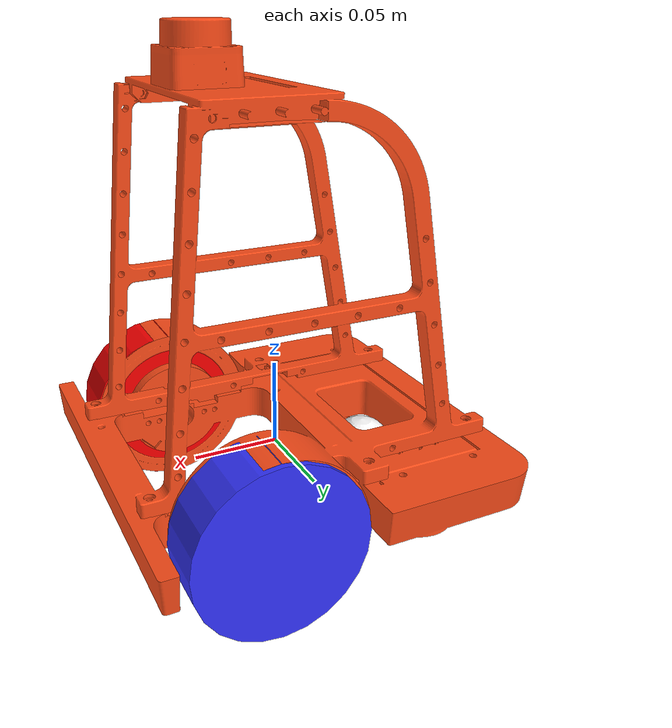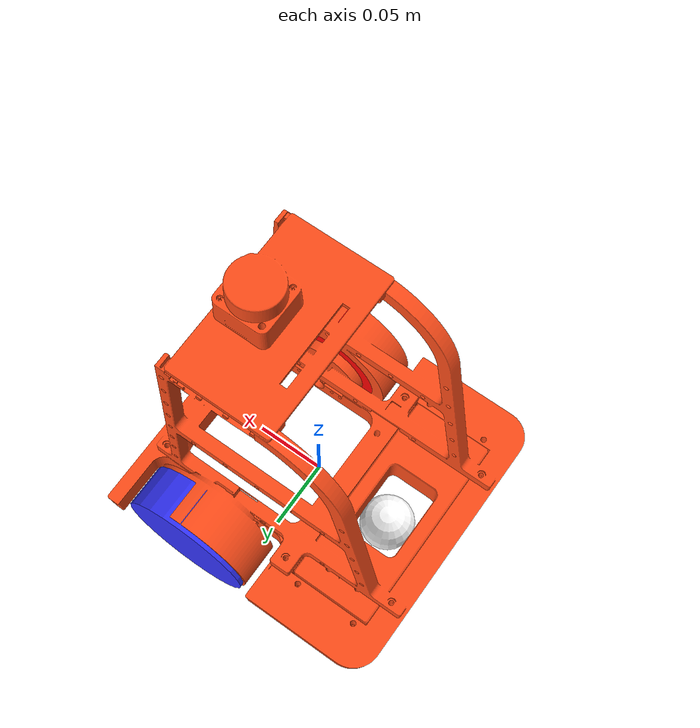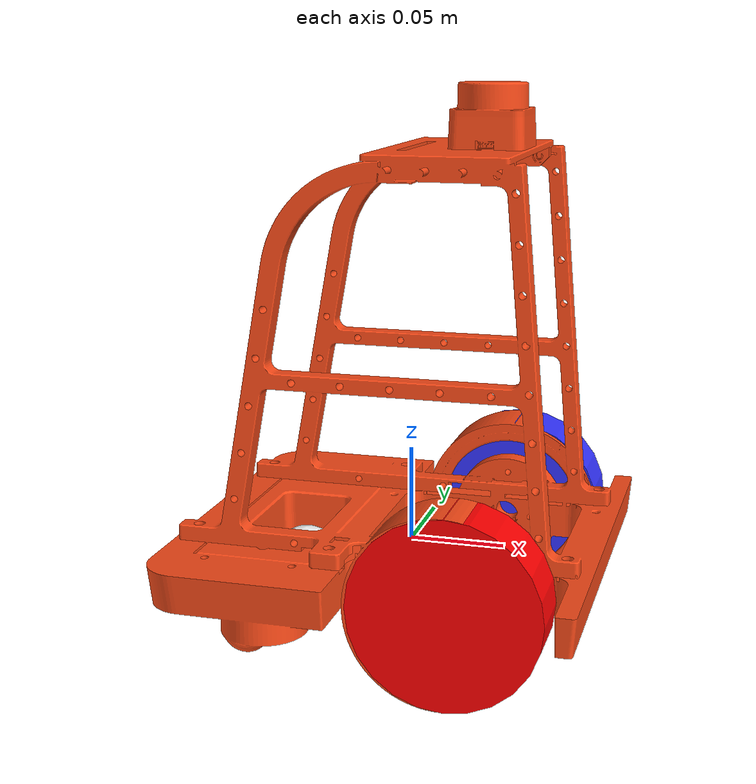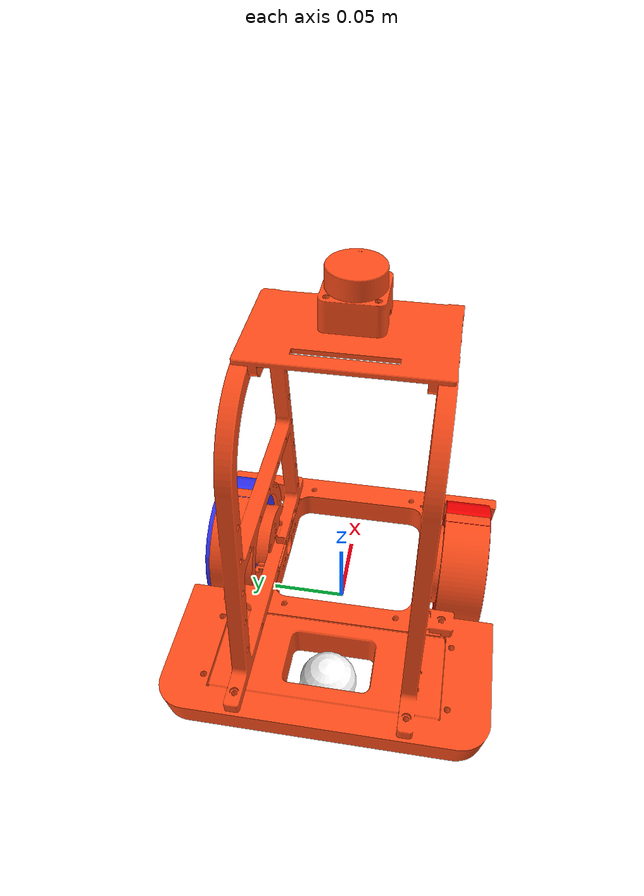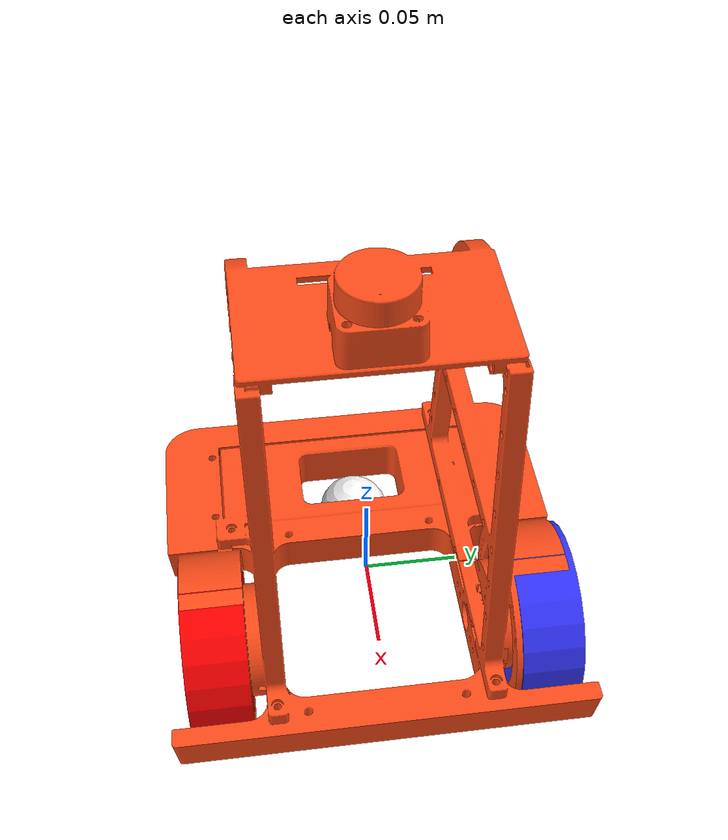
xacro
<?xml version="1.0"?>
<robot xmlns:xacro="http://www.ros.org/wiki/xacro" >

    <xacro:include filename="inertial_macros.xacro"/>

    <xacro:property name="chassis_length" value="0.215"/>
    <xacro:property name="chassis_width" value="0.216"/>
    <xacro:property name="chassis_height" value="0.280"/>
    <xacro:property name="chassis_mass" value="1.0"/>
    <xacro:property name="wheel_radius" value="0.048"/>
    <xacro:property name="wheel_thickness" value="0.032"/>
    <xacro:property name="wheel_mass" value="0.05"/>
    <xacro:property name="wheel_offset_x" value="0.042"/>
    <xacro:property name="wheel_offset_y" value="0.085"/>
    <xacro:property name="wheel_offset_z" value="0.035"/>
    <xacro:property name="caster_wheel_radius" value="0.02"/>
    <xacro:property name="caster_wheel_mass" value="1"/>
    <xacro:property name="caster_wheel_offset_x" value="-0.06"/>
    <xacro:property name="caster_wheel_offset_z" value="-${caster_wheel_radius}"/>

    <material name="white">
        <color rgba="1 1 1 1" />
    </material>

    <material name="orange">
        <color rgba="1 0.3 0.1 1"/>
    </material>

    <material name="blue">
        <color rgba="0.2 0.2 1 1"/>
    </material>

    <material name="black">
        <color rgba="0 0 0 1"/>
    </material>

    <material name="red">
        <color rgba="1 0 0 1"/>
    </material>

    <!-- BASE LINK -->

    <link name="base_link">
    </link>

    <!-- BASE_FOOTPRINT LINK -->

    <joint name="base_footprint_joint" type="fixed">
        <parent link="base_link"/>
        <child link="base_footprint"/>
        <origin xyz="0 0 -${wheel_radius}" rpy="0 0 0"/>
    </joint>

    <link name="base_footprint"/>

    <!-- CHASSIS LINK -->

    <joint name="chassis_joint" type="fixed">
        <parent link="base_link"/>
        <child link="chassis"/>
        <origin xyz="0 0 0"/>
    </joint>

    <link name="chassis">
        <visual>
            <origin xyz="0 0 0" rpy="0 0 0"/>
            <geometry>
                <mesh filename="package://articubot_one/meshes/gazebo_skooter.stl" scale="0.001 0.001 0.001"/>
            </geometry>
            <material name="orange"/>
        </visual>
        <collision>
            <origin xyz="0 0 0"/>
            <geometry>
                <mesh filename="package://articubot_one/meshes/gazebo_skooter.stl" scale="0.001 0.001 0.001"/>
            </geometry>
        </collision>
        <xacro:inertial_box mass="0.5" x="${chassis_length}" y="${chassis_width}" z="${chassis_height}">
            <origin xyz="0 0 0" rpy="0 0 0"/>
        </xacro:inertial_box>
    </link>

    <gazebo reference="chassis">
        <material>Gazebo/Orange</material>
    </gazebo>

    <!-- LEFT WHEEL LINK -->

    <joint name="left_wheel_joint" type="continuous">
        <parent link="base_link"/>
        <child link="left_wheel"/>
        <origin xyz="${wheel_offset_x} ${wheel_offset_y} 0" rpy="-${pi/2} 0 0" />
        <axis xyz="0 0 1"/>
    </joint>

    <link name="left_wheel">
        <visual>
            <geometry>
                <cylinder radius="${wheel_radius}" length="${wheel_thickness}"/>
            </geometry>
            <material name="blue"/>
        </visual>
        <collision>
            <geometry>
                <sphere radius="${wheel_radius}"/>
            </geometry>
        </collision>
        <xacro:inertial_cylinder mass="${wheel_mass}" length="${wheel_thickness}" radius="${wheel_radius}">
            <origin xyz="0 0 0" rpy="0 0 0"/>
        </xacro:inertial_cylinder>
    </link>

    <gazebo reference="left_wheel">
        <material>Gazebo/Blue</material>
    </gazebo>

    <!-- RIGHT WHEEL LINK -->

    <joint name="right_wheel_joint" type="continuous">
        <parent link="base_link"/>
        <child link="right_wheel"/>
        <origin xyz="${wheel_offset_x} ${-wheel_offset_y} 0" rpy="${pi/2} 0 0" />
        <axis xyz="0 0 -1"/>
    </joint>

    <link name="right_wheel">
        <visual>
            <geometry>
                <cylinder radius="${wheel_radius}" length="${wheel_thickness}"/>
            </geometry>
            <material name="red"/>
        </visual>
        <collision>
            <geometry>
                <sphere radius="${wheel_radius}"/>
            </geometry>
        </collision>
        <xacro:inertial_cylinder mass="${wheel_mass}" length="${wheel_thickness}" radius="${wheel_radius}">
            <origin xyz="0 0 0" rpy="0 0 0"/>
        </xacro:inertial_cylinder>
    </link>

    <gazebo reference="right_wheel">
        <material>Gazebo/Blue</material>
    </gazebo>

    <!-- CASTER WHEEL LINK -->

    <joint name="caster_wheel_joint" type="fixed">
        <parent link="base_link"/>
        <child link="caster_wheel"/>
        <origin xyz="${caster_wheel_offset_x} 0 ${caster_wheel_offset_z}"/>
    </joint>

    <link name="caster_wheel">
        <visual>
            <geometry>
                <sphere radius="${caster_wheel_radius}"/>
            </geometry>
            <material name="white"/>
        </visual>
        <collision>
            <geometry>
                <sphere radius="${caster_wheel_radius}"/>
            </geometry>
        </collision>
        <xacro:inertial_sphere mass="${caster_wheel_mass}" radius="${caster_wheel_radius}">
            <origin xyz="0 0 0" rpy="0 0 0"/>
        </xacro:inertial_sphere>
    </link>

    <gazebo reference="caster_wheel">
        <material>Gazebo/White</material>
        <mu1 value="0.001"/>
        <mu2 value="0.001"/>
    </gazebo>

</robot>
